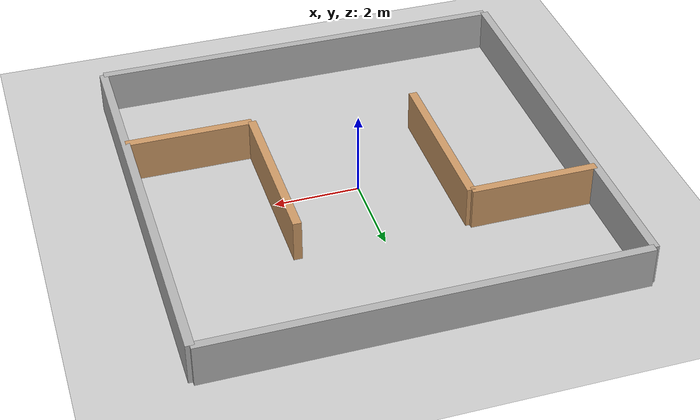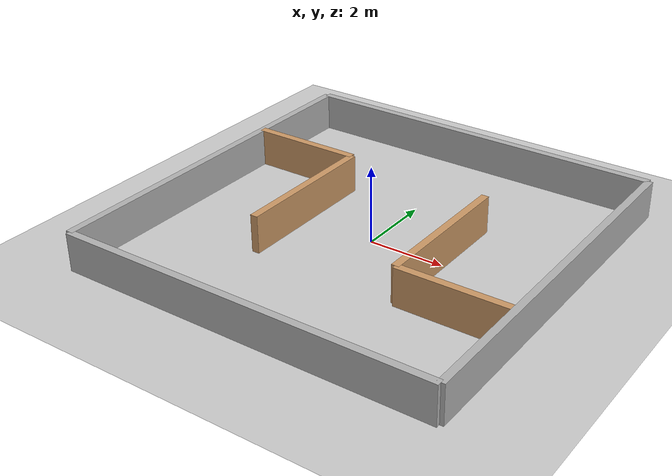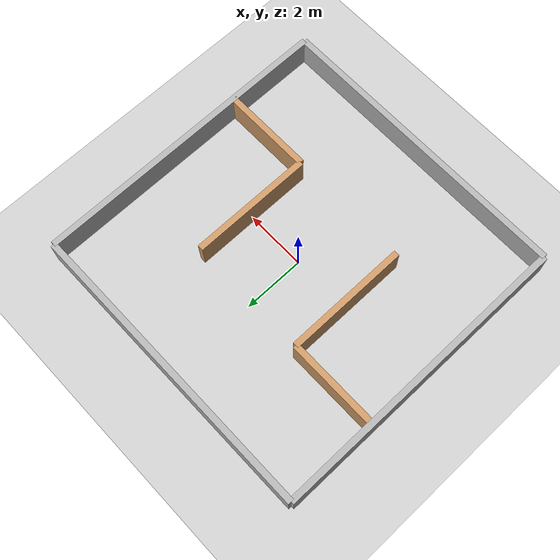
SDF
<?xml version="1.0"?>
<sdf version="1.6">
  <world name="construction_complete">

    <!-- Physics -->
    <physics type="ode">
      <real_time_update_rate>1000.0</real_time_update_rate>
      <max_step_size>0.001</max_step_size>
      <real_time_factor>1</real_time_factor>
    </physics>

    <!-- Light -->
    <include>
      <uri>model://sun</uri>
    </include>

    <!-- Ground Plane -->
    <include>
      <uri>model://ground_plane</uri>
    </include>

    <!-- Construction Site Outer Walls -->
    <!-- Wall 1: North wall -->
    <model name="wall_north">
      <static>true</static>
      <pose>0 5 0.5 0 0 0</pose>
      <link name="link">
        <collision name="collision">
          <geometry>
            <box>
              <size>10 0.2 1</size>
            </box>
          </geometry>
        </collision>
        <visual name="visual">
          <geometry>
            <box>
              <size>10 0.2 1</size>
            </box>
          </geometry>
          <material>
            <ambient>0.7 0.7 0.7 1</ambient>
            <diffuse>0.7 0.7 0.7 1</diffuse>
          </material>
        </visual>
      </link>
    </model>

    <!-- Wall 2: South wall -->
    <model name="wall_south">
      <static>true</static>
      <pose>0 -5 0.5 0 0 0</pose>
      <link name="link">
        <collision name="collision">
          <geometry>
            <box>
              <size>10 0.2 1</size>
            </box>
          </geometry>
        </collision>
        <visual name="visual">
          <geometry>
            <box>
              <size>10 0.2 1</size>
            </box>
          </geometry>
          <material>
            <ambient>0.7 0.7 0.7 1</ambient>
            <diffuse>0.7 0.7 0.7 1</diffuse>
          </material>
        </visual>
      </link>
    </model>

    <!-- Wall 3: East wall -->
    <model name="wall_east">
      <static>true</static>
      <pose>5 0 0.5 0 0 0</pose>
      <link name="link">
        <collision name="collision">
          <geometry>
            <box>
              <size>0.2 10 1</size>
            </box>
          </geometry>
        </collision>
        <visual name="visual">
          <geometry>
            <box>
              <size>0.2 10 1</size>
            </box>
          </geometry>
          <material>
            <ambient>0.7 0.7 0.7 1</ambient>
            <diffuse>0.7 0.7 0.7 1</diffuse>
          </material>
        </visual>
      </link>
    </model>

    <!-- Wall 4: West wall -->
    <model name="wall_west">
      <static>true</static>
      <pose>-5 0 0.5 0 0 0</pose>
      <link name="link">
        <collision name="collision">
          <geometry>
            <box>
              <size>0.2 10 1</size>
            </box>
          </geometry>
        </collision>
        <visual name="visual">
          <geometry>
            <box>
              <size>0.2 10 1</size>
            </box>
          </geometry>
          <material>
            <ambient>0.7 0.7 0.7 1</ambient>
            <diffuse>0.7 0.7 0.7 1</diffuse>
          </material>
        </visual>
      </link>
    </model>

    <!-- Inner Room 1 walls (Complete) -->
    <model name="room1_wall1">
      <static>true</static>
      <pose>-2 0 0.5 0 0 0</pose>
      <link name="link">
        <collision name="collision">
          <geometry>
            <box>
              <size>0.2 4 1</size>
            </box>
          </geometry>
        </collision>
        <visual name="visual">
          <geometry>
            <box>
              <size>0.2 4 1</size>
            </box>
          </geometry>
          <material>
            <ambient>0.8 0.6 0.4 1</ambient>
            <diffuse>0.8 0.6 0.4 1</diffuse>
          </material>
        </visual>
      </link>
    </model>

    <model name="room1_wall2">
      <static>true</static>
      <pose>-3.5 2 0.5 0 0 1.5708</pose>
      <link name="link">
        <collision name="collision">
          <geometry>
            <box>
              <size>0.2 3 1</size>
            </box>
          </geometry>
        </collision>
        <visual name="visual">
          <geometry>
            <box>
              <size>0.2 3 1</size>
            </box>
          </geometry>
          <material>
            <ambient>0.8 0.6 0.4 1</ambient>
            <diffuse>0.8 0.6 0.4 1</diffuse>
          </material>
        </visual>
      </link>
    </model>

    <!-- Inner Room 2 walls (Complete) -->
    <model name="room2_wall1">
      <static>true</static>
      <pose>2 0 0.5 0 0 0</pose>
      <link name="link">
        <collision name="collision">
          <geometry>
            <box>
              <size>0.2 4 1</size>
            </box>
          </geometry>
        </collision>
        <visual name="visual">
          <geometry>
            <box>
              <size>0.2 4 1</size>
            </box>
          </geometry>
          <material>
            <ambient>0.8 0.6 0.4 1</ambient>
            <diffuse>0.8 0.6 0.4 1</diffuse>
          </material>
        </visual>
      </link>
    </model>

    <model name="room2_wall2">
      <static>true</static>
      <pose>3.5 -2 0.5 0 0 1.5708</pose>
      <link name="link">
        <collision name="collision">
          <geometry>
            <box>
              <size>0.2 3 1</size>
            </box>
          </geometry>
        </collision>
        <visual name="visual">
          <geometry>
            <box>
              <size>0.2 3 1</size>
            </box>
          </geometry>
          <material>
            <ambient>0.8 0.6 0.4 1</ambient>
            <diffuse>0.8 0.6 0.4 1</diffuse>
          </material>
        </visual>
      </link>
    </model>

  </world>
</sdf>
